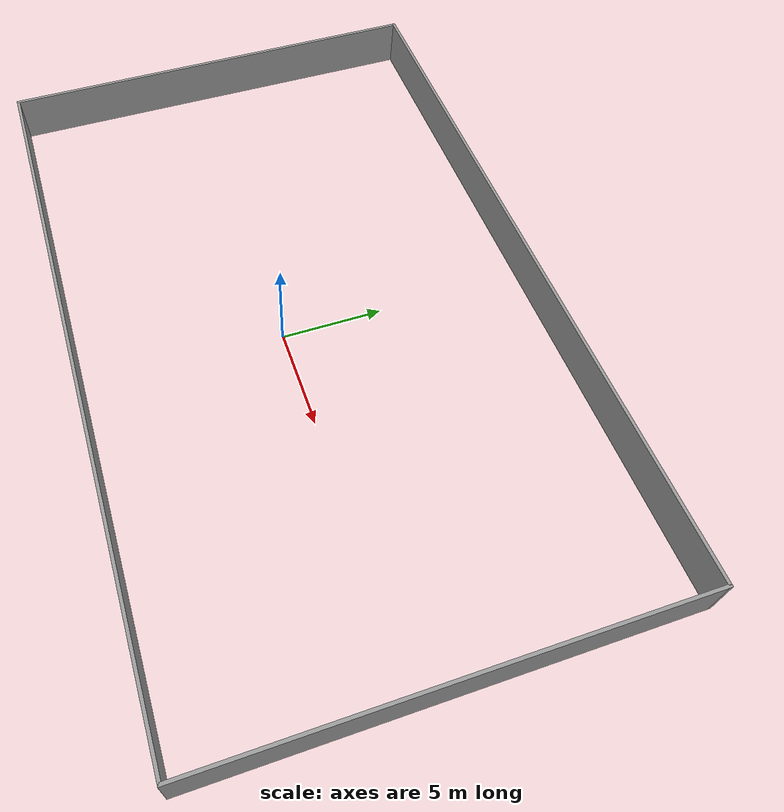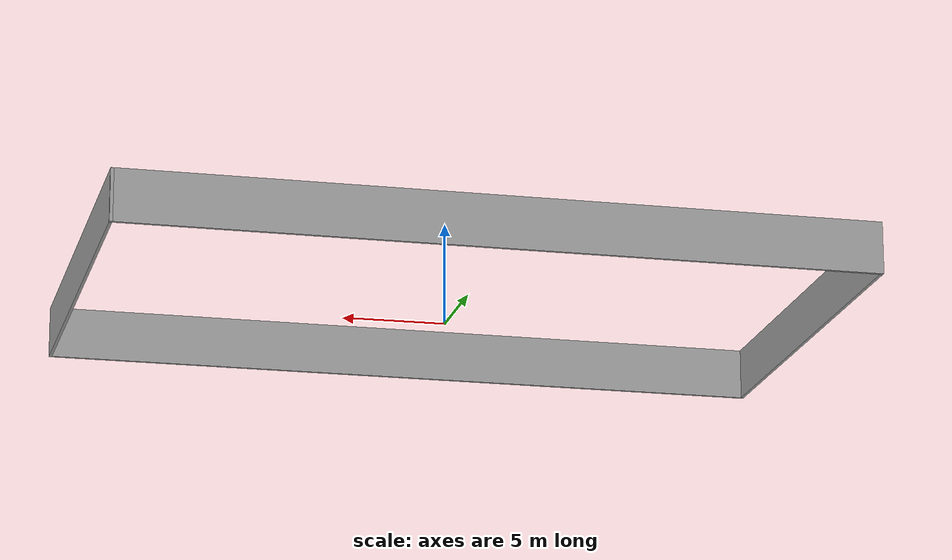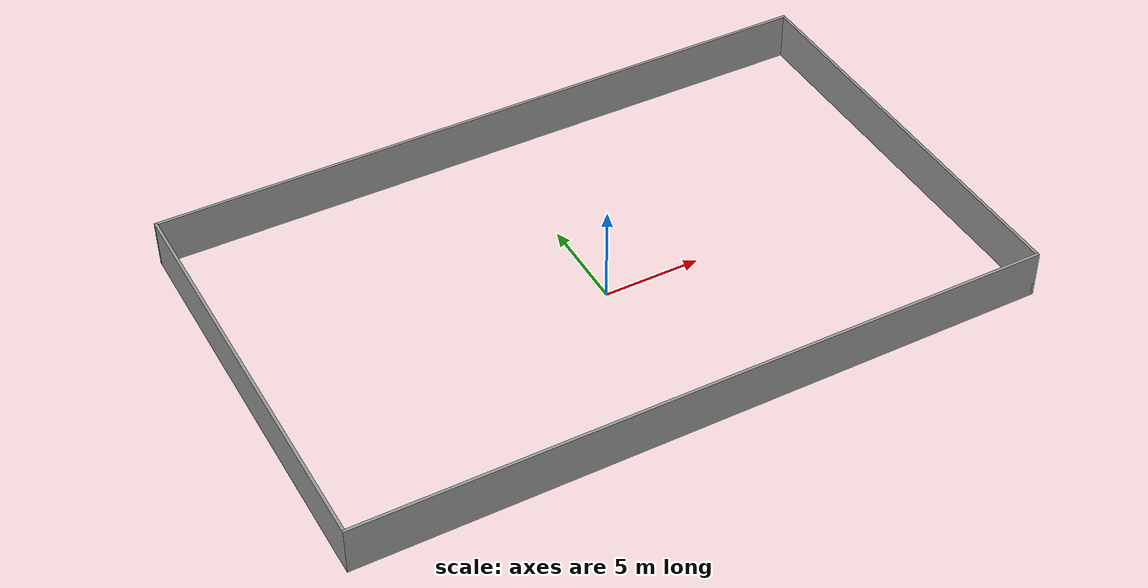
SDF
<?xml version='1.0'?>
<sdf version='1.6'>
  <model name='outerWall'>
    <pose frame=''>-0.008247 1.33241 0 0 -0 0</pose>
    <link name='Wall_5'>
      <collision name='Wall_5_Collision'>
        <geometry>
          <box>
            <size>22.25 0.15 2.5</size>
          </box>
        </geometry>
        <pose frame=''>0 0 1.25 0 -0 0</pose>
      </collision>
      <visual name='Wall_5_Visual'>
        <pose frame=''>0 0 1.25 0 -0 0</pose>
        <geometry>
          <box>
            <size>22.25 0.15 2.5</size>
          </box>
        </geometry>
        <material>
          <script>
            <uri>file://media/materials/scripts/gazebo.material</uri>
            <name>Gazebo/Grey</name>
          </script>
          <ambient>1 1 1 1</ambient>
        </material>
        <meta>
          <layer>0</layer>
        </meta>
      </visual>
      <pose frame=''>-17.8 0 0 0 -0 -1.5708</pose>
    </link>
    <link name='Wall_6'>
      <collision name='Wall_6_Collision'>
        <geometry>
          <box>
            <size>35.75 0.15 2.5</size>
          </box>
        </geometry>
        <pose frame=''>0 0 1.25 0 -0 0</pose>
      </collision>
      <visual name='Wall_6_Visual'>
        <pose frame=''>0 0 1.25 0 -0 0</pose>
        <geometry>
          <box>
            <size>35.75 0.15 2.5</size>
          </box>
        </geometry>
        <material>
          <script>
            <uri>file://media/materials/scripts/gazebo.material</uri>
            <name>Gazebo/Grey</name>
          </script>
          <ambient>1 1 1 1</ambient>
        </material>
        <meta>
          <layer>0</layer>
        </meta>
      </visual>
      <pose frame=''>0 -11.05 0 0 -0 0</pose>
    </link>
    <link name='Wall_7'>
      <collision name='Wall_7_Collision'>
        <geometry>
          <box>
            <size>22.25 0.15 2.5</size>
          </box>
        </geometry>
        <pose frame=''>0 0 1.25 0 -0 0</pose>
      </collision>
      <visual name='Wall_7_Visual'>
        <pose frame=''>0 0 1.25 0 -0 0</pose>
        <geometry>
          <box>
            <size>22.25 0.15 2.5</size>
          </box>
        </geometry>
        <material>
          <script>
            <uri>file://media/materials/scripts/gazebo.material</uri>
            <name>Gazebo/Grey</name>
          </script>
          <ambient>1 1 1 1</ambient>
        </material>
        <meta>
          <layer>0</layer>
        </meta>
      </visual>
      <pose frame=''>17.8 0 0 0 -0 1.5708</pose>
    </link>
    <link name='Wall_8'>
      <collision name='Wall_8_Collision'>
        <geometry>
          <box>
            <size>35.75 0.15 2.5</size>
          </box>
        </geometry>
        <pose frame=''>0 0 1.25 0 -0 0</pose>
      </collision>
      <visual name='Wall_8_Visual'>
        <pose frame=''>0 0 1.25 0 -0 0</pose>
        <geometry>
          <box>
            <size>35.75 0.15 2.5</size>
          </box>
        </geometry>
        <material>
          <script>
            <uri>file://media/materials/scripts/gazebo.material</uri>
            <name>Gazebo/Grey</name>
          </script>
          <ambient>1 1 1 1</ambient>
        </material>
        <meta>
          <layer>0</layer>
        </meta>
      </visual>
      <pose frame=''>0 11.05 0 0 -0 3.14159</pose>
    </link>
    <static>1</static>
  </model>
</sdf>
